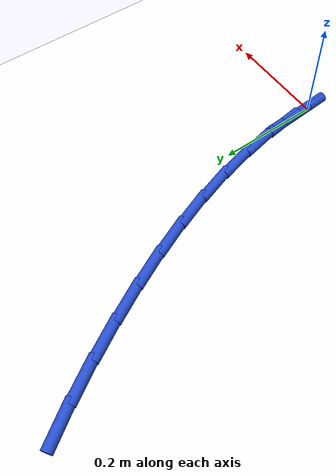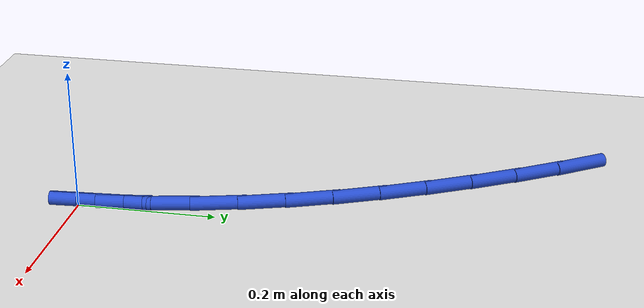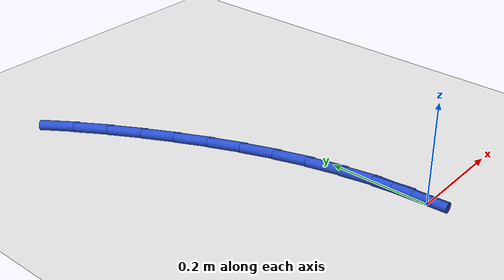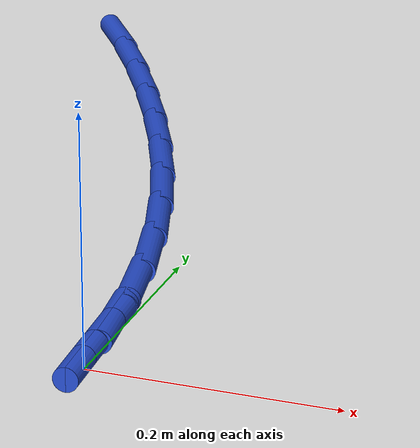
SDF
<sdf version="1.6">
 <world name="default">
  <model name="ground_plane">
   <static>1</static>
   <link name="link">
    <collision name="collision">
     <geometry><plane><normal>0 0 1</normal><size>100 100</size></plane></geometry>
     <surface><friction><ode><mu>100</mu><mu2>50</mu2></ode></friction></surface>
    </collision>
    <visual name="visual">
     <cast_shadows>0</cast_shadows>
     <geometry><plane><normal>0 0 1</normal><size>100 100</size></plane></geometry>
     <material>
      <script><uri>file://media/materials/scripts/gazebo.material</uri><name>Gazebo/WhiteGlow</name></script>
     </material>
    </visual>
   </link>
  </model>
  <model name="line">
   <link name="link_0">
    <pose>6.938893903907228e-17 -1.3877787807814457e-17 0.01 0 1.57 -1.5102027578031785</pose>
    <collision name="collision">
     <geometry><cylinder><radius>0.01</radius><length>0.08</length></cylinder></geometry>
    </collision>
    <visual name="visual">
     <material>
      <script><name>Gazebo/Blue</name><uri>file://media/materials/scripts/gazebo.material</uri></script>
     </material>
     <geometry><cylinder><radius>0.01</radius><length>0.08</length></cylinder></geometry>
    </visual>
   </link>
   <link name="link_1">
    <pose>-0.004074473575937837 0.06716035771783786 0.01 0 1.57 -1.4403459838132964</pose>
    <collision name="collision">
     <geometry><cylinder><radius>0.01</radius><length>0.08</length></cylinder></geometry>
    </collision>
    <visual name="visual">
     <material>
      <script><name>Gazebo/Blue</name><uri>file://media/materials/scripts/gazebo.material</uri></script>
     </material>
     <geometry><cylinder><radius>0.01</radius><length>0.08</length></cylinder></geometry>
    </visual>
   </link>
   <link name="link_2">
    <pose>-0.012759243913312852 0.13335758190805233 0.01 0 1.57 -1.3743705513439537</pose>
    <collision name="collision">
     <geometry><cylinder><radius>0.01</radius><length>0.08</length></cylinder></geometry>
    </collision>
    <visual name="visual">
     <material>
      <script><name>Gazebo/Blue</name><uri>file://media/materials/scripts/gazebo.material</uri></script>
     </material>
     <geometry><cylinder><radius>0.01</radius><length>0.08</length></cylinder></geometry>
    </visual>
   </link>
   <link name="link_3">
    <pose>-0.025752504537368236 0.1986530986603149 0.01 0 1.57 -1.3129207333565422</pose>
    <collision name="collision">
     <geometry><cylinder><radius>0.01</radius><length>0.08</length></cylinder></geometry>
    </collision>
    <visual name="visual">
     <material>
      <script><name>Gazebo/Blue</name><uri>file://media/materials/scripts/gazebo.material</uri></script>
     </material>
     <geometry><cylinder><radius>0.01</radius><length>0.08</length></cylinder></geometry>
    </visual>
   </link>
   <link name="link_4">
    <pose>-0.04275244897334717 0.2631083340642968 0.01 0 1.57 -1.2564224184452677</pose>
    <collision name="collision">
     <geometry><cylinder><radius>0.01</radius><length>0.08</length></cylinder></geometry>
    </collision>
    <visual name="visual">
     <material>
      <script><name>Gazebo/Blue</name><uri>file://media/materials/scripts/gazebo.material</uri></script>
     </material>
     <geometry><cylinder><radius>0.01</radius><length>0.08</length></cylinder></geometry>
    </visual>
   </link>
   <link name="link_5">
    <pose>-0.06345727074649293 0.32678471420966954 0.01 0 1.57 -1.2051050712116487</pose>
    <collision name="collision">
     <geometry><cylinder><radius>0.01</radius><length>0.08</length></cylinder></geometry>
    </collision>
    <visual name="visual">
     <material>
      <script><name>Gazebo/Blue</name><uri>file://media/materials/scripts/gazebo.material</uri></script>
     </material>
     <geometry><cylinder><radius>0.01</radius><length>0.08</length></cylinder></geometry>
    </visual>
   </link>
   <link name="link_6">
    <pose>-0.08756516338204871 0.38974366518610426 0.01 0 1.57 -1.159037881705605</pose>
    <collision name="collision">
     <geometry><cylinder><radius>0.01</radius><length>0.08</length></cylinder></geometry>
    </collision>
    <visual name="visual">
     <material>
      <script><name>Gazebo/Blue</name><uri>file://media/materials/scripts/gazebo.material</uri></script>
     </material>
     <geometry><cylinder><radius>0.01</radius><length>0.08</length></cylinder></geometry>
    </visual>
   </link>
   <link name="link_7">
    <pose>-0.11477432040525773 0.45204661308327243 0.01 0 1.57 -1.1181708368666492</pose>
    <collision name="collision">
     <geometry><cylinder><radius>0.01</radius><length>0.08</length></cylinder></geometry>
    </collision>
    <visual name="visual">
     <material>
      <script><name>Gazebo/Blue</name><uri>file://media/materials/scripts/gazebo.material</uri></script>
     </material>
     <geometry><cylinder><radius>0.01</radius><length>0.08</length></cylinder></geometry>
    </visual>
   </link>
   <link name="link_8">
    <pose>-0.14478293534136327 0.5137549839908453 0.01 0 1.57 -1.0821590289210044</pose>
    <collision name="collision">
     <geometry><cylinder><radius>0.01</radius><length>0.08</length></cylinder></geometry>
    </collision>
    <visual name="visual">
     <material>
      <script><name>Gazebo/Blue</name><uri>file://media/materials/scripts/gazebo.material</uri></script>
     </material>
     <geometry><cylinder><radius>0.01</radius><length>0.08</length></cylinder></geometry>
    </visual>
   </link>
   <link name="link_9">
    <pose>-0.17729804990625872 0.5749151193764195 0.01 0 1.57 -1.0470119778049949</pose>
    <collision name="collision">
     <geometry><cylinder><radius>0.01</radius><length>0.08</length></cylinder></geometry>
    </collision>
    <visual name="visual">
     <material>
      <script><name>Gazebo/Blue</name><uri>file://media/materials/scripts/gazebo.material</uri></script>
     </material>
     <geometry><cylinder><radius>0.01</radius><length>0.08</length></cylinder></geometry>
    </visual>
   </link>
   <link name="link_10">
    <pose>-0.2121815936447283 0.6353093039692986 0.01 0 1.57 -1.0091076207977425</pose>
    <collision name="collision">
     <geometry><cylinder><radius>0.01</radius><length>0.08</length></cylinder></geometry>
    </collision>
    <visual name="visual">
     <material>
      <script><name>Gazebo/Blue</name><uri>file://media/materials/scripts/gazebo.material</uri></script>
     </material>
     <geometry><cylinder><radius>0.01</radius><length>0.08</length></cylinder></geometry>
    </visual>
   </link>
   <link name="link_11">
    <pose>-0.24942739380287407 0.6944949599188949 0.01 0 1.57 -0.9678478894438513</pose>
    <collision name="collision">
     <geometry><cylinder><radius>0.01</radius><length>0.08</length></cylinder></geometry>
    </collision>
    <visual name="visual">
     <material>
      <script><name>Gazebo/Blue</name><uri>file://media/materials/scripts/gazebo.material</uri></script>
     </material>
     <geometry><cylinder><radius>0.01</radius><length>0.08</length></cylinder></geometry>
    </visual>
   </link>
   <link name="link_110">
    <pose>6.938893903907228e-17 -1.3877787807814457e-17 0.01 0 1.57 -1.5092947532019074</pose>
    <collision name="collision">
     <geometry><cylinder><radius>0.01</radius><length>0.08</length></cylinder></geometry>
    </collision>
    <visual name="visual">
     <material>
      <script><name>Gazebo/Blue</name><uri>file://media/materials/scripts/gazebo.material</uri></script>
     </material>
     <geometry><cylinder><radius>0.01</radius><length>0.08</length></cylinder></geometry>
    </visual>
   </link>
   <link name="link_111">
    <pose>-0.004128206669452374 0.06703894246477143 0.01 0 1.57 -1.5092947532019074</pose>
    <collision name="collision">
     <geometry><cylinder><radius>0.01</radius><length>0.08</length></cylinder></geometry>
    </collision>
    <visual name="visual">
     <material>
      <script><name>Gazebo/Blue</name><uri>file://media/materials/scripts/gazebo.material</uri></script>
     </material>
     <geometry><cylinder><radius>0.01</radius><length>0.08</length></cylinder></geometry>
    </visual>
   </link>
  </model>
 </world>
</sdf>
